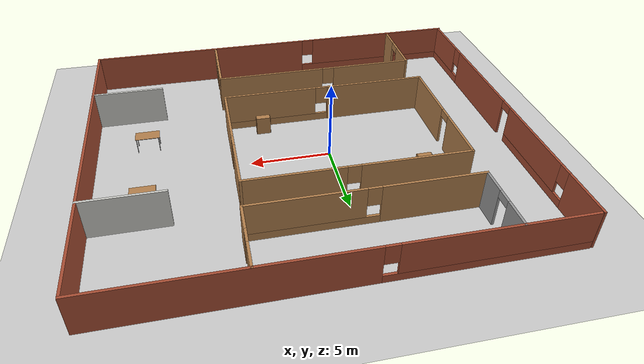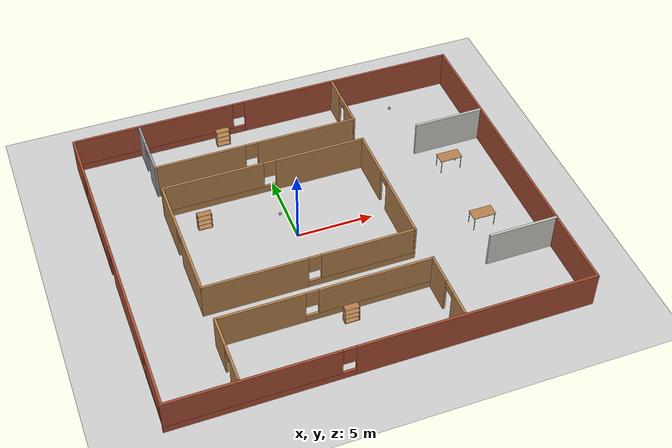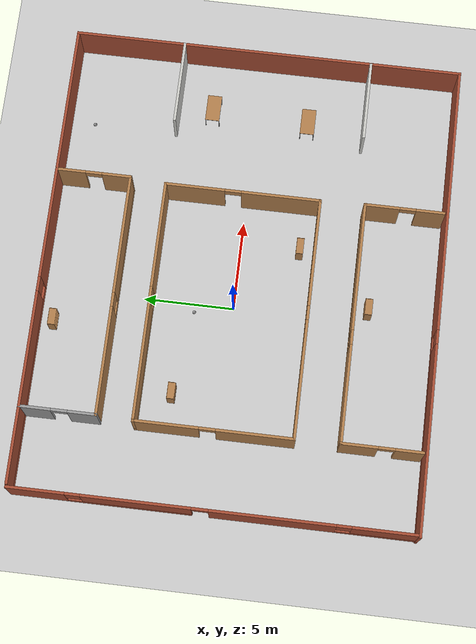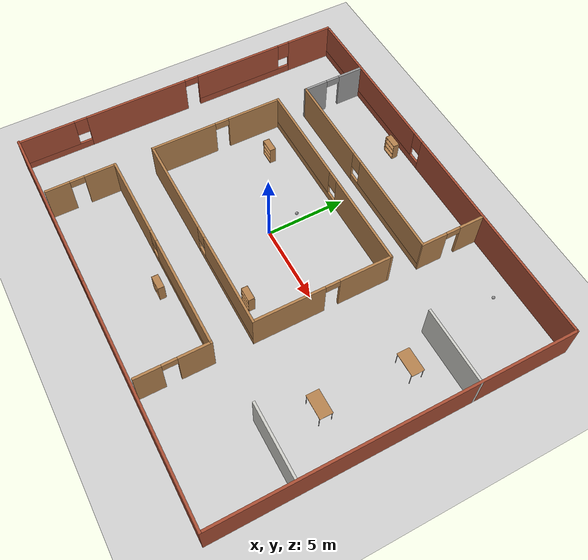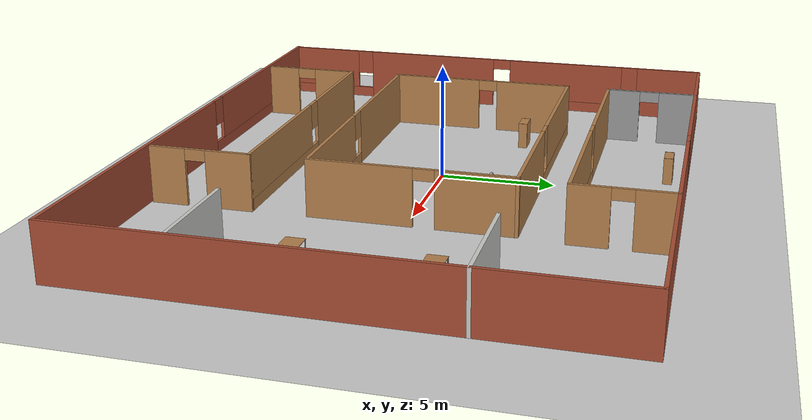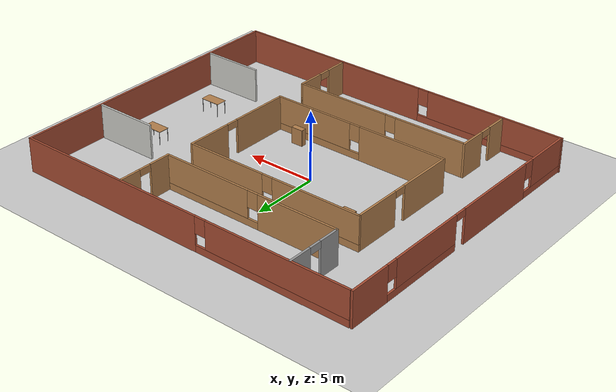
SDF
<sdf version="1.6">
 <world name="default">
  <light name="sun" type="directional">
   <pose>0 0 10 0 -0 0</pose>
   <diffuse>0.8 0.8 0.8 1</diffuse>
   <specular>0.2 0.2 0.2 1</specular>
   <attenuation>
    <range>1000</range>
    <constant>0.9</constant>
    <linear>0.01</linear>
    <quadratic>0.001</quadratic>
   </attenuation>
   <direction>-0.5 0.1 -0.9</direction>
  </light>
  <model name="ground_plane">
   <static>1</static>
   <link name="link">
    <collision name="collision">
     <geometry><plane><normal>0 0 1</normal><size>100 100</size></plane></geometry>
     <surface><friction><ode><mu>100</mu><mu2>50</mu2></ode></friction></surface>
    </collision>
    <visual name="visual">
     <cast_shadows>0</cast_shadows>
     <geometry><plane><normal>0 0 1</normal><size>100 100</size></plane></geometry>
     <material>
      <script><uri>file://media/materials/scripts/gazebo.material</uri><name>Gazebo/Grey</name></script>
     </material>
    </visual>
   </link>
  </model>
  <gravity>0 0 -9.8</gravity>
  <magnetic_field>6e-06 2.3e-05 -4.2e-05</magnetic_field>
  <atmosphere type="adiabatic"/>
  <physics name="default_physics" default="0" type="ode">
   <max_step_size>0.001</max_step_size>
   <real_time_factor>1</real_time_factor>
   <real_time_update_rate>1000</real_time_update_rate>
  </physics>
  <scene><ambient>0.4 0.4 0.4 1</ambient><background>0.7 0.7 0.7 1</background><shadows>1</shadows></scene>
  <spherical_coordinates>
   <surface_model>EARTH_WGS84</surface_model>
   <latitude_deg>0</latitude_deg>
   <longitude_deg>0</longitude_deg>
   <elevation>0</elevation>
   <heading_deg>0</heading_deg>
  </spherical_coordinates>
  <model name="newworld">
   <pose>1.44704 -0.283825 0 0 -0 0</pose>
   <link name="Wall_13">
    <pose>4.60647 0.466552 0 0 -0 1.5708</pose>
    <visual name="Wall_13_Visual_0">
     <pose>-2.13756 0 1.25 0 -0 0</pose>
     <geometry><box><size>4.47488 0.15 2.5</size></box></geometry>
     <material>
      <script><uri>file://media/materials/scripts/gazebo.material</uri><name>Gazebo/Wood</name></script>
      <ambient>0.996078 0.47451 0.0196078 1</ambient>
     </material>
     <meta><layer>0</layer></meta>
    </visual>
    <collision name="Wall_13_Collision_0">
     <geometry><box><size>4.47488 0.15 2.5</size></box></geometry>
     <pose>-2.13756 0 1.25 0 -0 0</pose>
    </collision>
    <visual name="Wall_13_Visual_1">
     <pose>2.68744 0 1.25 0 -0 0</pose>
     <geometry><box><size>3.37512 0.15 2.5</size></box></geometry>
     <material>
      <script><uri>file://media/materials/scripts/gazebo.material</uri><name>Gazebo/Wood</name></script>
      <ambient>0.996078 0.47451 0.0196078 1</ambient>
     </material>
     <meta><layer>0</layer></meta>
    </visual>
    <collision name="Wall_13_Collision_1">
     <geometry><box><size>3.37512 0.15 2.5</size></box></geometry>
     <pose>2.68744 0 1.25 0 -0 0</pose>
    </collision>
    <visual name="Wall_13_Visual_2">
     <pose>0.549876 0 2.25 0 -0 0</pose>
     <geometry><box><size>0.9 0.15 0.5</size></box></geometry>
     <material>
      <script><uri>file://media/materials/scripts/gazebo.material</uri><name>Gazebo/Wood</name></script>
      <ambient>0.996078 0.47451 0.0196078 1</ambient>
     </material>
     <meta><layer>0</layer></meta>
    </visual>
    <collision name="Wall_13_Collision_2">
     <geometry><box><size>0.9 0.15 0.5</size></box></geometry>
     <pose>0.549876 0 2.25 0 -0 0</pose>
    </collision>
   </link>
   <link name="Wall_14">
    <pose>-2.06853 4.76655 0 0 -0 3.14159</pose>
    <visual name="Wall_14_Visual_0">
     <pose>-3.73997 0 1.25 0 -0 0</pose>
     <geometry><box><size>6.02005 0.15 2.5</size></box></geometry>
     <material>
      <script><uri>file://media/materials/scripts/gazebo.material</uri><name>Gazebo/Wood</name></script>
      <ambient>0.996078 0.47451 0.0196078 1</ambient>
     </material>
     <meta><layer>0</layer></meta>
    </visual>
    <collision name="Wall_14_Collision_0">
     <geometry><box><size>6.02005 0.15 2.5</size></box></geometry>
     <pose>-3.73997 0 1.25 0 -0 0</pose>
    </collision>
    <visual name="Wall_14_Visual_1">
     <pose>3.01003 0 0.25 0 -0 0</pose>
     <geometry><box><size>7.47995 0.15 0.5</size></box></geometry>
     <material>
      <script><uri>file://media/materials/scripts/gazebo.material</uri><name>Gazebo/Wood</name></script>
      <ambient>0.996078 0.47451 0.0196078 1</ambient>
     </material>
     <meta><layer>0</layer></meta>
    </visual>
    <collision name="Wall_14_Collision_1">
     <geometry><box><size>7.47995 0.15 0.5</size></box></geometry>
     <pose>3.01003 0 0.25 0 -0 0</pose>
    </collision>
    <visual name="Wall_14_Visual_2">
     <pose>3.41003 0 1.5 0 -0 0</pose>
     <geometry><box><size>6.67995 0.15 2</size></box></geometry>
     <material>
      <script><uri>file://media/materials/scripts/gazebo.material</uri><name>Gazebo/Wood</name></script>
      <ambient>0.996078 0.47451 0.0196078 1</ambient>
     </material>
     <meta><layer>0</layer></meta>
    </visual>
    <collision name="Wall_14_Collision_2">
     <geometry><box><size>6.67995 0.15 2</size></box></geometry>
     <pose>3.41003 0 1.5 0 -0 0</pose>
    </collision>
    <visual name="Wall_14_Visual_3">
     <pose>-0.329949 0 1.9 0 -0 0</pose>
     <geometry><box><size>0.8 0.15 1.2</size></box></geometry>
     <material>
      <script><uri>file://media/materials/scripts/gazebo.material</uri><name>Gazebo/Wood</name></script>
      <ambient>0.996078 0.47451 0.0196078 1</ambient>
     </material>
     <meta><layer>0</layer></meta>
    </visual>
    <collision name="Wall_14_Collision_3">
     <geometry><box><size>0.8 0.15 1.2</size></box></geometry>
     <pose>-0.329949 0 1.9 0 -0 0</pose>
    </collision>
   </link>
   <link name="Wall_2">
    <collision name="Wall_2_Collision">
     <geometry><box><size>21.8915 0.15 2.5</size></box></geometry>
     <pose>0 0 1.25 0 -0 0</pose>
    </collision>
    <visual name="Wall_2_Visual">
     <pose>0 0 1.25 0 -0 0</pose>
     <geometry><box><size>21.8915 0.15 2.5</size></box></geometry>
     <material>
      <script><uri>file://media/materials/scripts/gazebo.material</uri><name>Gazebo/Bricks</name></script>
      <ambient>1 1 1 1</ambient>
     </material>
     <meta><layer>0</layer></meta>
    </visual>
    <pose>13.0496 0 0 0 0 -1.5708</pose>
   </link>
   <link name="Wall_21">
    <pose>-8.67277 -8.48349 0 0 -0 1.5708</pose>
    <visual name="Wall_21_Visual_0">
     <pose>-1.47222 0 1.25 0 -0 0</pose>
     <geometry><box><size>1.55555 0.15 2.5</size></box></geometry>
     <material>
      <script><uri>file://media/materials/scripts/gazebo.material</uri><name>Gazebo/Wood</name></script>
      <ambient>1 1 1 1</ambient>
     </material>
     <meta><layer>0</layer></meta>
    </visual>
    <collision name="Wall_21_Collision_0">
     <geometry><box><size>1.55555 0.15 2.5</size></box></geometry>
     <pose>-1.47222 0 1.25 0 -0 0</pose>
    </collision>
    <visual name="Wall_21_Visual_1">
     <pose>1.22778 0 1.25 0 -0 0</pose>
     <geometry><box><size>2.04445 0.15 2.5</size></box></geometry>
     <material>
      <script><uri>file://media/materials/scripts/gazebo.material</uri><name>Gazebo/Wood</name></script>
      <ambient>1 1 1 1</ambient>
     </material>
     <meta><layer>0</layer></meta>
    </visual>
    <collision name="Wall_21_Collision_1">
     <geometry><box><size>2.04445 0.15 2.5</size></box></geometry>
     <pose>1.22778 0 1.25 0 -0 0</pose>
    </collision>
    <visual name="Wall_21_Visual_2">
     <pose>-0.244446 0 2.25 0 -0 0</pose>
     <geometry><box><size>0.9 0.15 0.5</size></box></geometry>
     <material>
      <script><uri>file://media/materials/scripts/gazebo.material</uri><name>Gazebo/Wood</name></script>
      <ambient>1 1 1 1</ambient>
     </material>
     <meta><layer>0</layer></meta>
    </visual>
    <collision name="Wall_21_Collision_2">
     <geometry><box><size>0.9 0.15 0.5</size></box></geometry>
     <pose>-0.244446 0 2.25 0 -0 0</pose>
    </collision>
   </link>
   <link name="Wall_22">
    <pose>-1.99777 -6.30849 0 0 -0 0</pose>
    <visual name="Wall_22_Visual_0">
     <pose>-4.01146 0 1.25 0 -0 0</pose>
     <geometry><box><size>5.47708 0.15 2.5</size></box></geometry>
     <material>
      <script><uri>file://media/materials/scripts/gazebo.material</uri><name>Gazebo/Wood</name></script>
      <ambient>1 1 1 1</ambient>
     </material>
     <meta><layer>0</layer></meta>
    </visual>
    <collision name="Wall_22_Collision_0">
     <geometry><box><size>5.47708 0.15 2.5</size></box></geometry>
     <pose>-4.01146 0 1.25 0 -0 0</pose>
    </collision>
    <visual name="Wall_22_Visual_1">
     <pose>2.73854 0 0.25 0 -0 0</pose>
     <geometry><box><size>8.02292 0.15 0.5</size></box></geometry>
     <material>
      <script><uri>file://media/materials/scripts/gazebo.material</uri><name>Gazebo/Wood</name></script>
      <ambient>1 1 1 1</ambient>
     </material>
     <meta><layer>0</layer></meta>
    </visual>
    <collision name="Wall_22_Collision_1">
     <geometry><box><size>8.02292 0.15 0.5</size></box></geometry>
     <pose>2.73854 0 0.25 0 -0 0</pose>
    </collision>
    <visual name="Wall_22_Visual_2">
     <pose>3.13854 0 1.5 0 -0 0</pose>
     <geometry><box><size>7.22292 0.15 2</size></box></geometry>
     <material>
      <script><uri>file://media/materials/scripts/gazebo.material</uri><name>Gazebo/Wood</name></script>
      <ambient>1 1 1 1</ambient>
     </material>
     <meta><layer>0</layer></meta>
    </visual>
    <collision name="Wall_22_Collision_2">
     <geometry><box><size>7.22292 0.15 2</size></box></geometry>
     <pose>3.13854 0 1.5 0 -0 0</pose>
    </collision>
    <visual name="Wall_22_Visual_3">
     <pose>-0.872921 0 1.9 0 -0 0</pose>
     <geometry><box><size>0.8 0.15 1.2</size></box></geometry>
     <material>
      <script><uri>file://media/materials/scripts/gazebo.material</uri><name>Gazebo/Wood</name></script>
      <ambient>1 1 1 1</ambient>
     </material>
     <meta><layer>0</layer></meta>
    </visual>
    <collision name="Wall_22_Collision_3">
     <geometry><box><size>0.8 0.15 1.2</size></box></geometry>
     <pose>-0.872921 0 1.9 0 -0 0</pose>
    </collision>
   </link>
   <link name="Wall_23">
    <pose>4.67723 -8.48349 0 0 0 -1.5708</pose>
    <visual name="Wall_23_Visual_0">
     <pose>-1.2531 0 1.25 0 -0 0</pose>
     <geometry><box><size>1.9938 0.15 2.5</size></box></geometry>
     <material>
      <script><uri>file://media/materials/scripts/gazebo.material</uri><name>Gazebo/Wood</name></script>
      <ambient>1 1 1 1</ambient>
     </material>
     <meta><layer>0</layer></meta>
    </visual>
    <collision name="Wall_23_Collision_0">
     <geometry><box><size>1.9938 0.15 2.5</size></box></geometry>
     <pose>-1.2531 0 1.25 0 -0 0</pose>
    </collision>
    <visual name="Wall_23_Visual_1">
     <pose>1.4469 0 1.25 0 -0 0</pose>
     <geometry><box><size>1.6062 0.15 2.5</size></box></geometry>
     <material>
      <script><uri>file://media/materials/scripts/gazebo.material</uri><name>Gazebo/Wood</name></script>
      <ambient>1 1 1 1</ambient>
     </material>
     <meta><layer>0</layer></meta>
    </visual>
    <collision name="Wall_23_Collision_1">
     <geometry><box><size>1.6062 0.15 2.5</size></box></geometry>
     <pose>1.4469 0 1.25 0 -0 0</pose>
    </collision>
    <visual name="Wall_23_Visual_2">
     <pose>0.193803 0 2.25 0 -0 0</pose>
     <geometry><box><size>0.9 0.15 0.5</size></box></geometry>
     <material>
      <script><uri>file://media/materials/scripts/gazebo.material</uri><name>Gazebo/Wood</name></script>
      <ambient>1 1 1 1</ambient>
     </material>
     <meta><layer>0</layer></meta>
    </visual>
    <collision name="Wall_23_Collision_2">
     <geometry><box><size>0.9 0.15 0.5</size></box></geometry>
     <pose>0.193803 0 2.25 0 -0 0</pose>
    </collision>
   </link>
   <link name="Wall_25">
    <pose>-8.67277 8.80166 0 0 0 -1.5708</pose>
    <visual name="Wall_25_Visual_0">
     <pose>-1.25114 0 1.25 0 -0 0</pose>
     <geometry><box><size>1.74771 0.15 2.5</size></box></geometry>
     <material>
      <script><uri>file://media/materials/scripts/gazebo.material</uri><name>Gazebo/Grey</name></script>
      <ambient>1 1 1 1</ambient>
     </material>
     <meta><layer>0</layer></meta>
    </visual>
    <collision name="Wall_25_Collision_0">
     <geometry><box><size>1.74771 0.15 2.5</size></box></geometry>
     <pose>-1.25114 0 1.25 0 -0 0</pose>
    </collision>
    <visual name="Wall_25_Visual_1">
     <pose>1.32386 0 1.25 0 -0 0</pose>
     <geometry><box><size>1.60229 0.15 2.5</size></box></geometry>
     <material>
      <script><uri>file://media/materials/scripts/gazebo.material</uri><name>Gazebo/Grey</name></script>
      <ambient>1 1 1 1</ambient>
     </material>
     <meta><layer>0</layer></meta>
    </visual>
    <collision name="Wall_25_Collision_1">
     <geometry><box><size>1.60229 0.15 2.5</size></box></geometry>
     <pose>1.32386 0 1.25 0 -0 0</pose>
    </collision>
    <visual name="Wall_25_Visual_2">
     <pose>0.072712 0 2.25 0 -0 0</pose>
     <geometry><box><size>0.9 0.15 0.5</size></box></geometry>
     <material>
      <script><uri>file://media/materials/scripts/gazebo.material</uri><name>Gazebo/Grey</name></script>
      <ambient>1 1 1 1</ambient>
     </material>
     <meta><layer>0</layer></meta>
    </visual>
    <collision name="Wall_25_Collision_2">
     <geometry><box><size>0.9 0.15 0.5</size></box></geometry>
     <pose>0.072712 0 2.25 0 -0 0</pose>
    </collision>
   </link>
   <link name="Wall_34">
    <pose>-1.99777 6.75166 0 0 -0 0</pose>
    <visual name="Wall_34_Visual_0">
     <pose>-3.72843 0 1.25 0 -0 0</pose>
     <geometry><box><size>6.04314 0.15 2.5</size></box></geometry>
     <material>
      <script><uri>file://media/materials/scripts/gazebo.material</uri><name>Gazebo/Wood</name></script>
      <ambient>1 1 1 1</ambient>
     </material>
     <meta><layer>0</layer></meta>
    </visual>
    <collision name="Wall_34_Collision_0">
     <geometry><box><size>6.04314 0.15 2.5</size></box></geometry>
     <pose>-3.72843 0 1.25 0 -0 0</pose>
    </collision>
    <visual name="Wall_34_Visual_1">
     <pose>3.02157 0 0.25 0 -0 0</pose>
     <geometry><box><size>7.45686 0.15 0.5</size></box></geometry>
     <material>
      <script><uri>file://media/materials/scripts/gazebo.material</uri><name>Gazebo/Wood</name></script>
      <ambient>1 1 1 1</ambient>
     </material>
     <meta><layer>0</layer></meta>
    </visual>
    <collision name="Wall_34_Collision_1">
     <geometry><box><size>7.45686 0.15 0.5</size></box></geometry>
     <pose>3.02157 0 0.25 0 -0 0</pose>
    </collision>
    <visual name="Wall_34_Visual_2">
     <pose>3.42157 0 1.5 0 -0 0</pose>
     <geometry><box><size>6.65686 0.15 2</size></box></geometry>
     <material>
      <script><uri>file://media/materials/scripts/gazebo.material</uri><name>Gazebo/Wood</name></script>
      <ambient>1 1 1 1</ambient>
     </material>
     <meta><layer>0</layer></meta>
    </visual>
    <collision name="Wall_34_Collision_2">
     <geometry><box><size>6.65686 0.15 2</size></box></geometry>
     <pose>3.42157 0 1.5 0 -0 0</pose>
    </collision>
    <visual name="Wall_34_Visual_3">
     <pose>-0.306865 0 1.9 0 -0 0</pose>
     <geometry><box><size>0.8 0.15 1.2</size></box></geometry>
     <material>
      <script><uri>file://media/materials/scripts/gazebo.material</uri><name>Gazebo/Wood</name></script>
      <ambient>1 1 1 1</ambient>
     </material>
     <meta><layer>0</layer></meta>
    </visual>
    <collision name="Wall_34_Collision_3">
     <geometry><box><size>0.8 0.15 1.2</size></box></geometry>
     <pose>-0.306865 0 1.9 0 -0 0</pose>
    </collision>
   </link>
   <link name="Wall_38">
    <pose>4.77107 8.80166 0 0 0 -1.5708</pose>
    <visual name="Wall_38_Visual_0">
     <pose>-1.28652 0 1.25 0 -0 0</pose>
     <geometry><box><size>1.67695 0.15 2.5</size></box></geometry>
     <material>
      <script><uri>file://media/materials/scripts/gazebo.material</uri><name>Gazebo/Wood</name></script>
      <ambient>1 1 1 1</ambient>
     </material>
     <meta><layer>0</layer></meta>
    </visual>
    <collision name="Wall_38_Collision_0">
     <geometry><box><size>1.67695 0.15 2.5</size></box></geometry>
     <pose>-1.28652 0 1.25 0 -0 0</pose>
    </collision>
    <visual name="Wall_38_Visual_1">
     <pose>1.28848 0 1.25 0 -0 0</pose>
     <geometry><box><size>1.67304 0.15 2.5</size></box></geometry>
     <material>
      <script><uri>file://media/materials/scripts/gazebo.material</uri><name>Gazebo/Wood</name></script>
      <ambient>1 1 1 1</ambient>
     </material>
     <meta><layer>0</layer></meta>
    </visual>
    <collision name="Wall_38_Collision_1">
     <geometry><box><size>1.67304 0.15 2.5</size></box></geometry>
     <pose>1.28848 0 1.25 0 -0 0</pose>
    </collision>
    <visual name="Wall_38_Visual_2">
     <pose>0.001955 0 2.25 0 -0 0</pose>
     <geometry><box><size>0.9 0.15 0.5</size></box></geometry>
     <material>
      <script><uri>file://media/materials/scripts/gazebo.material</uri><name>Gazebo/Wood</name></script>
      <ambient>1 1 1 1</ambient>
     </material>
     <meta><layer>0</layer></meta>
    </visual>
    <collision name="Wall_38_Collision_2">
     <geometry><box><size>0.9 0.15 0.5</size></box></geometry>
     <pose>0.001955 0 2.25 0 -0 0</pose>
    </collision>
   </link>
   <link name="Wall_40">
    <collision name="Wall_40_Collision">
     <geometry><box><size>4.75 0.15 2.5</size></box></geometry>
     <pose>0 0 1.25 0 -0 0</pose>
    </collision>
    <visual name="Wall_40_Visual">
     <pose>0 0 1.25 0 -0 0</pose>
     <geometry><box><size>4.75 0.15 2.5</size></box></geometry>
     <material>
      <script><uri>file://media/materials/scripts/gazebo.material</uri><name>Gazebo/CeilingTiled</name></script>
      <ambient>1 1 1 1</ambient>
     </material>
     <meta><layer>0</layer></meta>
    </visual>
    <pose>10.7504 4.76655 0 0 -0 0</pose>
   </link>
   <link name="Wall_44">
    <collision name="Wall_44_Collision">
     <geometry><box><size>4.5 0.15 2.5</size></box></geometry>
     <pose>0 0 1.25 0 -0 0</pose>
    </collision>
    <visual name="Wall_44_Visual">
     <pose>0 0 1.25 0 -0 0</pose>
     <geometry><box><size>4.5 0.15 2.5</size></box></geometry>
     <material>
      <script><uri>file://media/materials/scripts/gazebo.material</uri><name>Gazebo/CeilingTiled</name></script>
      <ambient>1 1 1 1</ambient>
     </material>
     <meta><layer>0</layer></meta>
    </visual>
    <pose>10.8377 -5.84701 0 0 -0 0</pose>
   </link>
   <link name="Wall_46">
    <pose>-12.989 0.051659 0 0 0 -1.5708</pose>
    <visual name="Wall_46_Visual_0">
     <pose>-9.30395 0 1.25 0 -0 0</pose>
     <geometry><box><size>3.1421 0.15 2.5</size></box></geometry>
     <material>
      <script><uri>file://media/materials/scripts/gazebo.material</uri><name>Gazebo/Bricks</name></script>
      <ambient>1 1 1 1</ambient>
     </material>
     <meta><layer>0</layer></meta>
    </visual>
    <collision name="Wall_46_Collision_0">
     <geometry><box><size>3.1421 0.15 2.5</size></box></geometry>
     <pose>-9.30395 0 1.25 0 -0 0</pose>
    </collision>
    <visual name="Wall_46_Visual_1">
     <pose>3.19952 0 1.25 0 -0 0</pose>
     <geometry><box><size>6.721 0.15 2.5</size></box></geometry>
     <material>
      <script><uri>file://media/materials/scripts/gazebo.material</uri><name>Gazebo/Bricks</name></script>
      <ambient>1 1 1 1</ambient>
     </material>
     <meta><layer>0</layer></meta>
    </visual>
    <collision name="Wall_46_Collision_1">
     <geometry><box><size>6.721 0.15 2.5</size></box></geometry>
     <pose>3.19952 0 1.25 0 -0 0</pose>
    </collision>
    <visual name="Wall_46_Visual_2">
     <pose>-4.39694 0 0.25 0 -0 0</pose>
     <geometry><box><size>6.67192 0.15 0.5</size></box></geometry>
     <material>
      <script><uri>file://media/materials/scripts/gazebo.material</uri><name>Gazebo/Bricks</name></script>
      <ambient>1 1 1 1</ambient>
     </material>
     <meta><layer>0</layer></meta>
    </visual>
    <collision name="Wall_46_Collision_2">
     <geometry><box><size>6.67192 0.15 0.5</size></box></geometry>
     <pose>-4.39694 0 0.25 0 -0 0</pose>
    </collision>
    <visual name="Wall_46_Visual_3">
     <pose>8.71751 0 0.25 0 -0 0</pose>
     <geometry><box><size>4.31498 0.15 0.5</size></box></geometry>
     <material>
      <script><uri>file://media/materials/scripts/gazebo.material</uri><name>Gazebo/Bricks</name></script>
      <ambient>1 1 1 1</ambient>
     </material>
     <meta><layer>0</layer></meta>
    </visual>
    <collision name="Wall_46_Collision_3">
     <geometry><box><size>4.31498 0.15 0.5</size></box></geometry>
     <pose>8.71751 0 0.25 0 -0 0</pose>
    </collision>
    <visual name="Wall_46_Visual_4">
     <pose>-3.99694 0 1.5 0 -0 0</pose>
     <geometry><box><size>5.87192 0.15 2</size></box></geometry>
     <material>
      <script><uri>file://media/materials/scripts/gazebo.material</uri><name>Gazebo/Bricks</name></script>
      <ambient>1 1 1 1</ambient>
     </material>
     <meta><layer>0</layer></meta>
    </visual>
    <collision name="Wall_46_Collision_4">
     <geometry><box><size>5.87192 0.15 2</size></box></geometry>
     <pose>-3.99694 0 1.5 0 -0 0</pose>
    </collision>
    <visual name="Wall_46_Visual_5">
     <pose>-3.99694 0 1.5 0 -0 0</pose>
     <geometry><box><size>5.87192 0.15 2</size></box></geometry>
     <material>
      <script><uri>file://media/materials/scripts/gazebo.material</uri><name>Gazebo/Bricks</name></script>
      <ambient>1 1 1 1</ambient>
     </material>
     <meta><layer>0</layer></meta>
    </visual>
    <collision name="Wall_46_Collision_5">
     <geometry><box><size>5.87192 0.15 2</size></box></geometry>
     <pose>-3.99694 0 1.5 0 -0 0</pose>
    </collision>
    <visual name="Wall_46_Visual_6">
     <pose>9.11751 0 1.5 0 -0 0</pose>
     <geometry><box><size>3.51498 0.15 2</size></box></geometry>
     <material>
      <script><uri>file://media/materials/scripts/gazebo.material</uri><name>Gazebo/Bricks</name></script>
      <ambient>1 1 1 1</ambient>
     </material>
     <meta><layer>0</layer></meta>
    </visual>
    <collision name="Wall_46_Collision_6">
     <geometry><box><size>3.51498 0.15 2</size></box></geometry>
     <pose>9.11751 0 1.5 0 -0 0</pose>
    </collision>
    <visual name="Wall_46_Visual_7">
     <pose>-7.3329 0 1.9 0 -0 0</pose>
     <geometry><box><size>0.8 0.15 1.2</size></box></geometry>
     <material>
      <script><uri>file://media/materials/scripts/gazebo.material</uri><name>Gazebo/Bricks</name></script>
      <ambient>1 1 1 1</ambient>
     </material>
     <meta><layer>0</layer></meta>
    </visual>
    <collision name="Wall_46_Collision_7">
     <geometry><box><size>0.8 0.15 1.2</size></box></geometry>
     <pose>-7.3329 0 1.9 0 -0 0</pose>
    </collision>
    <visual name="Wall_46_Visual_8">
     <pose>6.96002 0 1.9 0 -0 0</pose>
     <geometry><box><size>0.8 0.15 1.2</size></box></geometry>
     <material>
      <script><uri>file://media/materials/scripts/gazebo.material</uri><name>Gazebo/Bricks</name></script>
      <ambient>1 1 1 1</ambient>
     </material>
     <meta><layer>0</layer></meta>
    </visual>
    <collision name="Wall_46_Collision_8">
     <geometry><box><size>0.8 0.15 1.2</size></box></geometry>
     <pose>6.96002 0 1.9 0 -0 0</pose>
    </collision>
    <visual name="Wall_46_Visual_9">
     <pose>-0.610984 0 2.25 0 -0 0</pose>
     <geometry><box><size>0.9 0.15 0.5</size></box></geometry>
     <material>
      <script><uri>file://media/materials/scripts/gazebo.material</uri><name>Gazebo/Bricks</name></script>
      <ambient>1 1 1 1</ambient>
     </material>
     <meta><layer>0</layer></meta>
    </visual>
    <collision name="Wall_46_Collision_9">
     <geometry><box><size>0.9 0.15 0.5</size></box></geometry>
     <pose>-0.610984 0 2.25 0 -0 0</pose>
    </collision>
    <visual name="Wall_46_Visual_10">
     <pose>-0.610984 0 2.25 0 -0 0</pose>
     <geometry><box><size>0.9 0.15 0.5</size></box></geometry>
     <material>
      <script><uri>file://media/materials/scripts/gazebo.material</uri><name>Gazebo/Bricks</name></script>
      <ambient>1 1 1 1</ambient>
     </material>
     <meta><layer>0</layer></meta>
    </visual>
    <collision name="Wall_46_Collision_10">
     <geometry><box><size>0.9 0.15 0.5</size></box></geometry>
     <pose>-0.610984 0 2.25 0 -0 0</pose>
    </collision>
   </link>
   <link name="Wall_49">
    <pose>-0.000434 -10.8708 0 0 -0 3.14159</pose>
    <visual name="Wall_49_Visual_0">
     <pose>-5.60024 0 1.25 0 -0 0</pose>
     <geometry><box><size>15.0495 0.15 2.5</size></box></geometry>
     <material>
      <script><uri>file://media/materials/scripts/gazebo.material</uri><name>Gazebo/Bricks</name></script>
      <ambient>1 1 1 1</ambient>
     </material>
     <meta><layer>0</layer></meta>
    </visual>
    <collision name="Wall_49_Collision_0">
     <geometry><box><size>15.0495 0.15 2.5</size></box></geometry>
     <pose>-5.60024 0 1.25 0 -0 0</pose>
    </collision>
    <visual name="Wall_49_Visual_1">
     <pose>7.52476 0 0.25 0 -0 0</pose>
     <geometry><box><size>11.2005 0.15 0.5</size></box></geometry>
     <material>
      <script><uri>file://media/materials/scripts/gazebo.material</uri><name>Gazebo/Bricks</name></script>
      <ambient>1 1 1 1</ambient>
     </material>
     <meta><layer>0</layer></meta>
    </visual>
    <collision name="Wall_49_Collision_1">
     <geometry><box><size>11.2005 0.15 0.5</size></box></geometry>
     <pose>7.52476 0 0.25 0 -0 0</pose>
    </collision>
    <visual name="Wall_49_Visual_2">
     <pose>7.92476 0 1.5 0 -0 0</pose>
     <geometry><box><size>10.4005 0.15 2</size></box></geometry>
     <material>
      <script><uri>file://media/materials/scripts/gazebo.material</uri><name>Gazebo/Bricks</name></script>
      <ambient>1 1 1 1</ambient>
     </material>
     <meta><layer>0</layer></meta>
    </visual>
    <collision name="Wall_49_Collision_2">
     <geometry><box><size>10.4005 0.15 2</size></box></geometry>
     <pose>7.92476 0 1.5 0 -0 0</pose>
    </collision>
    <visual name="Wall_49_Visual_3">
     <pose>2.32453 0 1.9 0 -0 0</pose>
     <geometry><box><size>0.8 0.15 1.2</size></box></geometry>
     <material>
      <script><uri>file://media/materials/scripts/gazebo.material</uri><name>Gazebo/Bricks</name></script>
      <ambient>1 1 1 1</ambient>
     </material>
     <meta><layer>0</layer></meta>
    </visual>
    <collision name="Wall_49_Collision_3">
     <geometry><box><size>0.8 0.15 1.2</size></box></geometry>
     <pose>2.32453 0 1.9 0 -0 0</pose>
    </collision>
   </link>
   <link name="Wall_5">
    <pose>-8.74353 0.466552 0 0 0 -1.5708</pose>
    <visual name="Wall_5_Visual_0">
     <pose>-2.5813 0 1.25 0 -0 0</pose>
     <geometry><box><size>3.58739 0.15 2.5</size></box></geometry>
     <material>
      <script><uri>file://media/materials/scripts/gazebo.material</uri><name>Gazebo/Wood</name></script>
      <ambient>0.996078 0.47451 0.0196078 1</ambient>
     </material>
     <meta><layer>0</layer></meta>
    </visual>
    <collision name="Wall_5_Collision_0">
     <geometry><box><size>3.58739 0.15 2.5</size></box></geometry>
     <pose>-2.5813 0 1.25 0 -0 0</pose>
    </collision>
    <visual name="Wall_5_Visual_1">
     <pose>2.2437 0 1.25 0 -0 0</pose>
     <geometry><box><size>4.2626 0.15 2.5</size></box></geometry>
     <material>
      <script><uri>file://media/materials/scripts/gazebo.material</uri><name>Gazebo/Wood</name></script>
      <ambient>0.996078 0.47451 0.0196078 1</ambient>
     </material>
     <meta><layer>0</layer></meta>
    </visual>
    <collision name="Wall_5_Collision_1">
     <geometry><box><size>4.2626 0.15 2.5</size></box></geometry>
     <pose>2.2437 0 1.25 0 -0 0</pose>
    </collision>
    <visual name="Wall_5_Visual_2">
     <pose>-0.337605 0 2.25 0 -0 0</pose>
     <geometry><box><size>0.9 0.15 0.5</size></box></geometry>
     <material>
      <script><uri>file://media/materials/scripts/gazebo.material</uri><name>Gazebo/Wood</name></script>
      <ambient>0.996078 0.47451 0.0196078 1</ambient>
     </material>
     <meta><layer>0</layer></meta>
    </visual>
    <collision name="Wall_5_Collision_2">
     <geometry><box><size>0.9 0.15 0.5</size></box></geometry>
     <pose>-0.337605 0 2.25 0 -0 0</pose>
    </collision>
   </link>
   <link name="Wall_51">
    <pose>0.124566 10.8708 0 0 -0 3.14159</pose>
    <visual name="Wall_51_Visual_0">
     <pose>-5.68751 0 1.25 0 -0 0</pose>
     <geometry><box><size>14.625 0.15 2.5</size></box></geometry>
     <material>
      <script><uri>file://media/materials/scripts/gazebo.material</uri><name>Gazebo/Bricks</name></script>
      <ambient>1 1 1 1</ambient>
     </material>
     <meta><layer>0</layer></meta>
    </visual>
    <collision name="Wall_51_Collision_0">
     <geometry><box><size>14.625 0.15 2.5</size></box></geometry>
     <pose>-5.68751 0 1.25 0 -0 0</pose>
    </collision>
    <visual name="Wall_51_Visual_1">
     <pose>7.31249 0 0.25 0 -0 0</pose>
     <geometry><box><size>11.375 0.15 0.5</size></box></geometry>
     <material>
      <script><uri>file://media/materials/scripts/gazebo.material</uri><name>Gazebo/Bricks</name></script>
      <ambient>1 1 1 1</ambient>
     </material>
     <meta><layer>0</layer></meta>
    </visual>
    <collision name="Wall_51_Collision_1">
     <geometry><box><size>11.375 0.15 0.5</size></box></geometry>
     <pose>7.31249 0 0.25 0 -0 0</pose>
    </collision>
    <visual name="Wall_51_Visual_2">
     <pose>7.71249 0 1.5 0 -0 0</pose>
     <geometry><box><size>10.575 0.15 2</size></box></geometry>
     <material>
      <script><uri>file://media/materials/scripts/gazebo.material</uri><name>Gazebo/Bricks</name></script>
      <ambient>1 1 1 1</ambient>
     </material>
     <meta><layer>0</layer></meta>
    </visual>
    <collision name="Wall_51_Collision_2">
     <geometry><box><size>10.575 0.15 2</size></box></geometry>
     <pose>7.71249 0 1.5 0 -0 0</pose>
    </collision>
    <visual name="Wall_51_Visual_3">
     <pose>2.02498 0 1.9 0 -0 0</pose>
     <geometry><box><size>0.8 0.15 1.2</size></box></geometry>
     <material>
      <script><uri>file://media/materials/scripts/gazebo.material</uri><name>Gazebo/Bricks</name></script>
      <ambient>1 1 1 1</ambient>
     </material>
     <meta><layer>0</layer></meta>
    </visual>
    <collision name="Wall_51_Collision_3">
     <geometry><box><size>0.8 0.15 1.2</size></box></geometry>
     <pose>2.02498 0 1.9 0 -0 0</pose>
    </collision>
   </link>
   <link name="Wall_6">
    <pose>-2.06853 -3.83345 0 0 -0 0</pose>
    <visual name="Wall_6_Visual_0">
     <pose>-3.4454 0 1.25 0 -0 0</pose>
     <geometry><box><size>6.60919 0.15 2.5</size></box></geometry>
     <material>
      <script><uri>file://media/materials/scripts/gazebo.material</uri><name>Gazebo/Wood</name></script>
      <ambient>0.996078 0.47451 0.0196078 1</ambient>
     </material>
     <meta><layer>0</layer></meta>
    </visual>
    <collision name="Wall_6_Collision_0">
     <geometry><box><size>6.60919 0.15 2.5</size></box></geometry>
     <pose>-3.4454 0 1.25 0 -0 0</pose>
    </collision>
    <visual name="Wall_6_Visual_1">
     <pose>3.3046 0 0.25 0 -0 0</pose>
     <geometry><box><size>6.89081 0.15 0.5</size></box></geometry>
     <material>
      <script><uri>file://media/materials/scripts/gazebo.material</uri><name>Gazebo/Wood</name></script>
      <ambient>0.996078 0.47451 0.0196078 1</ambient>
     </material>
     <meta><layer>0</layer></meta>
    </visual>
    <collision name="Wall_6_Collision_1">
     <geometry><box><size>6.89081 0.15 0.5</size></box></geometry>
     <pose>3.3046 0 0.25 0 -0 0</pose>
    </collision>
    <visual name="Wall_6_Visual_2">
     <pose>3.7046 0 1.5 0 -0 0</pose>
     <geometry><box><size>6.09081 0.15 2</size></box></geometry>
     <material>
      <script><uri>file://media/materials/scripts/gazebo.material</uri><name>Gazebo/Wood</name></script>
      <ambient>0.996078 0.47451 0.0196078 1</ambient>
     </material>
     <meta><layer>0</layer></meta>
    </visual>
    <collision name="Wall_6_Collision_2">
     <geometry><box><size>6.09081 0.15 2</size></box></geometry>
     <pose>3.7046 0 1.5 0 -0 0</pose>
    </collision>
    <visual name="Wall_6_Visual_3">
     <pose>0.259192 0 1.9 0 -0 0</pose>
     <geometry><box><size>0.8 0.15 1.2</size></box></geometry>
     <material>
      <script><uri>file://media/materials/scripts/gazebo.material</uri><name>Gazebo/Wood</name></script>
      <ambient>0.996078 0.47451 0.0196078 1</ambient>
     </material>
     <meta><layer>0</layer></meta>
    </visual>
    <collision name="Wall_6_Collision_3">
     <geometry><box><size>0.8 0.15 1.2</size></box></geometry>
     <pose>0.259192 0 1.9 0 -0 0</pose>
    </collision>
   </link>
   <static>1</static>
  </model>
  <model name="my_ball">
   <link name="link_0">
    <inertial>
     <mass>1</mass>
     <inertia><ixx>0.1</ixx><ixy>0</ixy><ixz>0</ixz><iyy>0.1</iyy><iyz>0</iyz><izz>0.1</izz></inertia>
    </inertial>
    <visual name="visual">
     <geometry><sphere><radius>0.1</radius></sphere></geometry>
     <material>
      <lighting>1</lighting>
      <script><uri>file://media/materials/scripts/gazebo.material</uri><name>Gazebo/Grey</name></script>
      <shader type="pixel"><normal_map>__default__</normal_map></shader>
      <ambient>1 1 1 1</ambient>
      <diffuse>1 1 1 1</diffuse>
      <specular>1 1 1 1</specular>
      <emissive>1 1 1 1</emissive>
     </material>
    </visual>
    <collision name="collision">
     <geometry><sphere><radius>0.1</radius></sphere></geometry>
     <surface>
      <friction>
       <ode><mu>1</mu><mu2>1</mu2><fdir1>0 0 0</fdir1><slip1>0</slip1><slip2>0</slip2></ode>
       <torsional>
        <coefficient>1</coefficient>
        <patch_radius>0</patch_radius>
        <surface_radius>0</surface_radius>
        <use_patch_radius>1</use_patch_radius>
        <ode><slip>0</slip></ode>
       </torsional>
      </friction>
      <bounce><restitution_coefficient>0</restitution_coefficient><threshold>1e+06</threshold></bounce>
      <contact>
       <collide_without_contact>0</collide_without_contact>
       <collide_without_contact_bitmask>1</collide_without_contact_bitmask>
       <collide_bitmask>1</collide_bitmask>
       <ode>
        <soft_cfm>0</soft_cfm>
        <soft_erp>0.2</soft_erp>
        <kp>1e+13</kp>
        <kd>1</kd>
        <max_vel>0.01</max_vel>
        <min_depth>0</min_depth>
       </ode>
       <bullet>
        <split_impulse>1</split_impulse>
        <split_impulse_penetration_threshold>-0.01</split_impulse_penetration_threshold>
        <soft_cfm>0</soft_cfm>
        <soft_erp>0.2</soft_erp>
        <kp>1e+13</kp>
        <kd>1</kd>
       </bullet>
      </contact>
     </surface>
    </collision>
   </link>
   <static>0</static>
   <pose>-0.44264 2.13904 0.1 0 -0 0</pose>
  </model>
  <model name="bookshelf">
   <static>1</static>
   <link name="link">
    <inertial><mass>1</mass></inertial>
    <collision name="back">
     <pose>0 0.005 0.6 0 -0 0</pose>
     <geometry><box><size>0.9 0.01 1.2</size></box></geometry>
    </collision>
    <visual name="visual1">
     <pose>0 0.005 0.6 0 -0 0</pose>
     <geometry><box><size>0.9 0.01 1.2</size></box></geometry>
     <material>
      <script><uri>file://media/materials/scripts/gazebo.material</uri><name>Gazebo/Wood</name></script>
     </material>
    </visual>
    <collision name="left_side">
     <pose>0.45 -0.195 0.6 0 -0 0</pose>
     <geometry><box><size>0.02 0.4 1.2</size></box></geometry>
    </collision>
    <visual name="visual2">
     <pose>0.45 -0.195 0.6 0 -0 0</pose>
     <geometry><box><size>0.02 0.4 1.2</size></box></geometry>
     <material>
      <script><uri>file://media/materials/scripts/gazebo.material</uri><name>Gazebo/Wood</name></script>
     </material>
    </visual>
    <collision name="right_side">
     <pose>-0.45 -0.195 0.6 0 -0 0</pose>
     <geometry><box><size>0.02 0.4 1.2</size></box></geometry>
    </collision>
    <visual name="visual3">
     <pose>-0.45 -0.195 0.6 0 -0 0</pose>
     <geometry><box><size>0.02 0.4 1.2</size></box></geometry>
     <material>
      <script><uri>file://media/materials/scripts/gazebo.material</uri><name>Gazebo/Wood</name></script>
     </material>
    </visual>
    <collision name="bottom">
     <pose>0 -0.195 0.03 0 -0 0</pose>
     <geometry><box><size>0.88 0.4 0.06</size></box></geometry>
    </collision>
    <visual name="visual4">
     <pose>0 -0.195 0.03 0 -0 0</pose>
     <geometry><box><size>0.88 0.4 0.06</size></box></geometry>
     <material>
      <script><uri>file://media/materials/scripts/gazebo.material</uri><name>Gazebo/Wood</name></script>
     </material>
    </visual>
    <collision name="top">
     <pose>0 -0.195 1.19 0 -0 0</pose>
     <geometry><box><size>0.88 0.4 0.02</size></box></geometry>
    </collision>
    <visual name="visual5">
     <pose>0 -0.195 1.19 0 -0 0</pose>
     <geometry><box><size>0.88 0.4 0.02</size></box></geometry>
     <material>
      <script><uri>file://media/materials/scripts/gazebo.material</uri><name>Gazebo/Wood</name></script>
     </material>
    </visual>
    <collision name="low_shelf">
     <pose>0 -0.195 0.43 0 -0 0</pose>
     <geometry><box><size>0.88 0.4 0.02</size></box></geometry>
    </collision>
    <visual name="visual6">
     <pose>0 -0.195 0.43 0 -0 0</pose>
     <geometry><box><size>0.88 0.4 0.02</size></box></geometry>
     <material>
      <script><uri>file://media/materials/scripts/gazebo.material</uri><name>Gazebo/Wood</name></script>
     </material>
    </visual>
    <collision name="high_shelf">
     <pose>0 -0.195 0.8 0 -0 0</pose>
     <geometry><box><size>0.88 0.4 0.02</size></box></geometry>
    </collision>
    <visual name="visual7">
     <pose>0 -0.195 0.8 0 -0 0</pose>
     <geometry><box><size>0.88 0.4 0.02</size></box></geometry>
     <material>
      <script><uri>file://media/materials/scripts/gazebo.material</uri><name>Gazebo/Wood</name></script>
     </material>
    </visual>
   </link>
   <pose>0.703451 -7.22059 0 0 -0 0</pose>
  </model>
  <model name="bookshelf_0">
   <static>1</static>
   <link name="link">
    <inertial><mass>1</mass></inertial>
    <collision name="back">
     <pose>0 0.005 0.6 0 -0 0</pose>
     <geometry><box><size>0.9 0.01 1.2</size></box></geometry>
    </collision>
    <visual name="visual1">
     <pose>0 0.005 0.6 0 -0 0</pose>
     <geometry><box><size>0.9 0.01 1.2</size></box></geometry>
     <material>
      <script><uri>file://media/materials/scripts/gazebo.material</uri><name>Gazebo/Wood</name></script>
     </material>
    </visual>
    <collision name="left_side">
     <pose>0.45 -0.195 0.6 0 -0 0</pose>
     <geometry><box><size>0.02 0.4 1.2</size></box></geometry>
    </collision>
    <visual name="visual2">
     <pose>0.45 -0.195 0.6 0 -0 0</pose>
     <geometry><box><size>0.02 0.4 1.2</size></box></geometry>
     <material>
      <script><uri>file://media/materials/scripts/gazebo.material</uri><name>Gazebo/Wood</name></script>
     </material>
    </visual>
    <collision name="right_side">
     <pose>-0.45 -0.195 0.6 0 -0 0</pose>
     <geometry><box><size>0.02 0.4 1.2</size></box></geometry>
    </collision>
    <visual name="visual3">
     <pose>-0.45 -0.195 0.6 0 -0 0</pose>
     <geometry><box><size>0.02 0.4 1.2</size></box></geometry>
     <material>
      <script><uri>file://media/materials/scripts/gazebo.material</uri><name>Gazebo/Wood</name></script>
     </material>
    </visual>
    <collision name="bottom">
     <pose>0 -0.195 0.03 0 -0 0</pose>
     <geometry><box><size>0.88 0.4 0.06</size></box></geometry>
    </collision>
    <visual name="visual4">
     <pose>0 -0.195 0.03 0 -0 0</pose>
     <geometry><box><size>0.88 0.4 0.06</size></box></geometry>
     <material>
      <script><uri>file://media/materials/scripts/gazebo.material</uri><name>Gazebo/Wood</name></script>
     </material>
    </visual>
    <collision name="top">
     <pose>0 -0.195 1.19 0 -0 0</pose>
     <geometry><box><size>0.88 0.4 0.02</size></box></geometry>
    </collision>
    <visual name="visual5">
     <pose>0 -0.195 1.19 0 -0 0</pose>
     <geometry><box><size>0.88 0.4 0.02</size></box></geometry>
     <material>
      <script><uri>file://media/materials/scripts/gazebo.material</uri><name>Gazebo/Wood</name></script>
     </material>
    </visual>
    <collision name="low_shelf">
     <pose>0 -0.195 0.43 0 -0 0</pose>
     <geometry><box><size>0.88 0.4 0.02</size></box></geometry>
    </collision>
    <visual name="visual6">
     <pose>0 -0.195 0.43 0 -0 0</pose>
     <geometry><box><size>0.88 0.4 0.02</size></box></geometry>
     <material>
      <script><uri>file://media/materials/scripts/gazebo.material</uri><name>Gazebo/Wood</name></script>
     </material>
    </visual>
    <collision name="high_shelf">
     <pose>0 -0.195 0.8 0 -0 0</pose>
     <geometry><box><size>0.88 0.4 0.02</size></box></geometry>
    </collision>
    <visual name="visual7">
     <pose>0 -0.195 0.8 0 -0 0</pose>
     <geometry><box><size>0.88 0.4 0.02</size></box></geometry>
     <material>
      <script><uri>file://media/materials/scripts/gazebo.material</uri><name>Gazebo/Wood</name></script>
     </material>
    </visual>
   </link>
   <pose>-5.20691 2.95803 0 0 -0 0</pose>
  </model>
  <model name="bookshelf_1">
   <static>1</static>
   <link name="link">
    <inertial><mass>1</mass></inertial>
    <collision name="back">
     <pose>0 0.005 0.6 0 -0 0</pose>
     <geometry><box><size>0.9 0.01 1.2</size></box></geometry>
    </collision>
    <visual name="visual1">
     <pose>0 0.005 0.6 0 -0 0</pose>
     <geometry><box><size>0.9 0.01 1.2</size></box></geometry>
     <material>
      <script><uri>file://media/materials/scripts/gazebo.material</uri><name>Gazebo/Wood</name></script>
     </material>
    </visual>
    <collision name="left_side">
     <pose>0.45 -0.195 0.6 0 -0 0</pose>
     <geometry><box><size>0.02 0.4 1.2</size></box></geometry>
    </collision>
    <visual name="visual2">
     <pose>0.45 -0.195 0.6 0 -0 0</pose>
     <geometry><box><size>0.02 0.4 1.2</size></box></geometry>
     <material>
      <script><uri>file://media/materials/scripts/gazebo.material</uri><name>Gazebo/Wood</name></script>
     </material>
    </visual>
    <collision name="right_side">
     <pose>-0.45 -0.195 0.6 0 -0 0</pose>
     <geometry><box><size>0.02 0.4 1.2</size></box></geometry>
    </collision>
    <visual name="visual3">
     <pose>-0.45 -0.195 0.6 0 -0 0</pose>
     <geometry><box><size>0.02 0.4 1.2</size></box></geometry>
     <material>
      <script><uri>file://media/materials/scripts/gazebo.material</uri><name>Gazebo/Wood</name></script>
     </material>
    </visual>
    <collision name="bottom">
     <pose>0 -0.195 0.03 0 -0 0</pose>
     <geometry><box><size>0.88 0.4 0.06</size></box></geometry>
    </collision>
    <visual name="visual4">
     <pose>0 -0.195 0.03 0 -0 0</pose>
     <geometry><box><size>0.88 0.4 0.06</size></box></geometry>
     <material>
      <script><uri>file://media/materials/scripts/gazebo.material</uri><name>Gazebo/Wood</name></script>
     </material>
    </visual>
    <collision name="top">
     <pose>0 -0.195 1.19 0 -0 0</pose>
     <geometry><box><size>0.88 0.4 0.02</size></box></geometry>
    </collision>
    <visual name="visual5">
     <pose>0 -0.195 1.19 0 -0 0</pose>
     <geometry><box><size>0.88 0.4 0.02</size></box></geometry>
     <material>
      <script><uri>file://media/materials/scripts/gazebo.material</uri><name>Gazebo/Wood</name></script>
     </material>
    </visual>
    <collision name="low_shelf">
     <pose>0 -0.195 0.43 0 -0 0</pose>
     <geometry><box><size>0.88 0.4 0.02</size></box></geometry>
    </collision>
    <visual name="visual6">
     <pose>0 -0.195 0.43 0 -0 0</pose>
     <geometry><box><size>0.88 0.4 0.02</size></box></geometry>
     <material>
      <script><uri>file://media/materials/scripts/gazebo.material</uri><name>Gazebo/Wood</name></script>
     </material>
    </visual>
    <collision name="high_shelf">
     <pose>0 -0.195 0.8 0 -0 0</pose>
     <geometry><box><size>0.88 0.4 0.02</size></box></geometry>
    </collision>
    <visual name="visual7">
     <pose>0 -0.195 0.8 0 -0 0</pose>
     <geometry><box><size>0.88 0.4 0.02</size></box></geometry>
     <material>
      <script><uri>file://media/materials/scripts/gazebo.material</uri><name>Gazebo/Wood</name></script>
     </material>
    </visual>
   </link>
   <pose>-1.86142 9.97752 0 0 -0 0</pose>
  </model>
  <model name="my_ball_0">
   <link name="link_0">
    <inertial>
     <mass>1</mass>
     <inertia><ixx>0.1</ixx><ixy>0</ixy><ixz>0</ixz><iyy>0.1</iyy><iyz>0</iyz><izz>0.1</izz></inertia>
    </inertial>
    <visual name="visual">
     <geometry><sphere><radius>0.1</radius></sphere></geometry>
     <material>
      <lighting>1</lighting>
      <script><uri>file://media/materials/scripts/gazebo.material</uri><name>Gazebo/Grey</name></script>
      <shader type="pixel"><normal_map>__default__</normal_map></shader>
      <ambient>1 1 1 1</ambient>
      <diffuse>1 1 1 1</diffuse>
      <specular>1 1 1 1</specular>
      <emissive>1 1 1 1</emissive>
     </material>
    </visual>
    <collision name="collision">
     <geometry><sphere><radius>0.1</radius></sphere></geometry>
     <surface>
      <friction>
       <ode><mu>1</mu><mu2>1</mu2><fdir1>0 0 0</fdir1><slip1>0</slip1><slip2>0</slip2></ode>
       <torsional>
        <coefficient>1</coefficient>
        <patch_radius>0</patch_radius>
        <surface_radius>0</surface_radius>
        <use_patch_radius>1</use_patch_radius>
        <ode><slip>0</slip></ode>
       </torsional>
      </friction>
      <bounce><restitution_coefficient>0</restitution_coefficient><threshold>1e+06</threshold></bounce>
      <contact>
       <collide_without_contact>0</collide_without_contact>
       <collide_without_contact_bitmask>1</collide_without_contact_bitmask>
       <collide_bitmask>1</collide_bitmask>
       <ode>
        <soft_cfm>0</soft_cfm>
        <soft_erp>0.2</soft_erp>
        <kp>1e+13</kp>
        <kd>1</kd>
        <max_vel>0.01</max_vel>
        <min_depth>0</min_depth>
       </ode>
       <bullet>
        <split_impulse>1</split_impulse>
        <split_impulse_penetration_threshold>-0.01</split_impulse_penetration_threshold>
        <soft_cfm>0</soft_cfm>
        <soft_erp>0.2</soft_erp>
        <kp>1e+13</kp>
        <kd>1</kd>
       </bullet>
      </contact>
     </surface>
    </collision>
   </link>
   <static>0</static>
   <pose>9.97673 9.19331 0.1 0 -0 0</pose>
  </model>
  <model name="table">
   <static>1</static>
   <link name="link">
    <collision name="surface">
     <pose>0 0 1 0 -0 0</pose>
     <geometry><box><size>1.5 0.8 0.03</size></box></geometry>
     <surface><friction><ode><mu>0.6</mu><mu2>0.6</mu2></ode></friction></surface>
    </collision>
    <visual name="visual1">
     <pose>0 0 1 0 -0 0</pose>
     <geometry><box><size>1.5 0.8 0.03</size></box></geometry>
     <material>
      <script><uri>file://media/materials/scripts/gazebo.material</uri><name>Gazebo/Wood</name></script>
     </material>
    </visual>
    <collision name="front_left_leg">
     <pose>0.68 0.38 0.5 0 -0 0</pose>
     <geometry><cylinder><radius>0.02</radius><length>1</length></cylinder></geometry>
    </collision>
    <visual name="front_left_leg">
     <pose>0.68 0.38 0.5 0 -0 0</pose>
     <geometry><cylinder><radius>0.02</radius><length>1</length></cylinder></geometry>
     <material>
      <script><uri>file://media/materials/scripts/gazebo.material</uri><name>Gazebo/Grey</name></script>
     </material>
    </visual>
    <collision name="front_right_leg">
     <pose>0.68 -0.38 0.5 0 -0 0</pose>
     <geometry><cylinder><radius>0.02</radius><length>1</length></cylinder></geometry>
    </collision>
    <visual name="front_right_leg">
     <pose>0.68 -0.38 0.5 0 -0 0</pose>
     <geometry><cylinder><radius>0.02</radius><length>1</length></cylinder></geometry>
     <material>
      <script><uri>file://media/materials/scripts/gazebo.material</uri><name>Gazebo/Grey</name></script>
     </material>
    </visual>
    <collision name="back_right_leg">
     <pose>-0.68 -0.38 0.5 0 -0 0</pose>
     <geometry><cylinder><radius>0.02</radius><length>1</length></cylinder></geometry>
    </collision>
    <visual name="back_right_leg">
     <pose>-0.68 -0.38 0.5 0 -0 0</pose>
     <geometry><cylinder><radius>0.02</radius><length>1</length></cylinder></geometry>
     <material>
      <script><uri>file://media/materials/scripts/gazebo.material</uri><name>Gazebo/Grey</name></script>
     </material>
    </visual>
    <collision name="back_left_leg">
     <pose>-0.68 0.38 0.5 0 -0 0</pose>
     <geometry><cylinder><radius>0.02</radius><length>1</length></cylinder></geometry>
    </collision>
    <visual name="back_left_leg">
     <pose>-0.68 0.38 0.5 0 -0 0</pose>
     <geometry><cylinder><radius>0.02</radius><length>1</length></cylinder></geometry>
     <material>
      <script><uri>file://media/materials/scripts/gazebo.material</uri><name>Gazebo/Grey</name></script>
     </material>
    </visual>
   </link>
   <pose>11.4155 2.48747 0 0 -0 0</pose>
  </model>
  <model name="table_0">
   <static>1</static>
   <link name="link">
    <collision name="surface">
     <pose>0 0 1 0 -0 0</pose>
     <geometry><box><size>1.5 0.8 0.03</size></box></geometry>
     <surface><friction><ode><mu>0.6</mu><mu2>0.6</mu2></ode></friction></surface>
    </collision>
    <visual name="visual1">
     <pose>0 0 1 0 -0 0</pose>
     <geometry><box><size>1.5 0.8 0.03</size></box></geometry>
     <material>
      <script><uri>file://media/materials/scripts/gazebo.material</uri><name>Gazebo/Wood</name></script>
     </material>
    </visual>
    <collision name="front_left_leg">
     <pose>0.68 0.38 0.5 0 -0 0</pose>
     <geometry><cylinder><radius>0.02</radius><length>1</length></cylinder></geometry>
    </collision>
    <visual name="front_left_leg">
     <pose>0.68 0.38 0.5 0 -0 0</pose>
     <geometry><cylinder><radius>0.02</radius><length>1</length></cylinder></geometry>
     <material>
      <script><uri>file://media/materials/scripts/gazebo.material</uri><name>Gazebo/Grey</name></script>
     </material>
    </visual>
    <collision name="front_right_leg">
     <pose>0.68 -0.38 0.5 0 -0 0</pose>
     <geometry><cylinder><radius>0.02</radius><length>1</length></cylinder></geometry>
    </collision>
    <visual name="front_right_leg">
     <pose>0.68 -0.38 0.5 0 -0 0</pose>
     <geometry><cylinder><radius>0.02</radius><length>1</length></cylinder></geometry>
     <material>
      <script><uri>file://media/materials/scripts/gazebo.material</uri><name>Gazebo/Grey</name></script>
     </material>
    </visual>
    <collision name="back_right_leg">
     <pose>-0.68 -0.38 0.5 0 -0 0</pose>
     <geometry><cylinder><radius>0.02</radius><length>1</length></cylinder></geometry>
    </collision>
    <visual name="back_right_leg">
     <pose>-0.68 -0.38 0.5 0 -0 0</pose>
     <geometry><cylinder><radius>0.02</radius><length>1</length></cylinder></geometry>
     <material>
      <script><uri>file://media/materials/scripts/gazebo.material</uri><name>Gazebo/Grey</name></script>
     </material>
    </visual>
    <collision name="back_left_leg">
     <pose>-0.68 0.38 0.5 0 -0 0</pose>
     <geometry><cylinder><radius>0.02</radius><length>1</length></cylinder></geometry>
    </collision>
    <visual name="back_left_leg">
     <pose>-0.68 0.38 0.5 0 -0 0</pose>
     <geometry><cylinder><radius>0.02</radius><length>1</length></cylinder></geometry>
     <material>
      <script><uri>file://media/materials/scripts/gazebo.material</uri><name>Gazebo/Grey</name></script>
     </material>
    </visual>
   </link>
   <pose>11.2094 -2.95732 0 0 -0 0</pose>
  </model>
  <model name="bookshelf_2">
   <static>1</static>
   <link name="link">
    <inertial><mass>1</mass></inertial>
    <collision name="back">
     <pose>0 0.005 0.6 0 -0 0</pose>
     <geometry><box><size>0.9 0.01 1.2</size></box></geometry>
    </collision>
    <visual name="visual1">
     <pose>0 0.005 0.6 0 -0 0</pose>
     <geometry><box><size>0.9 0.01 1.2</size></box></geometry>
     <material>
      <script><uri>file://media/materials/scripts/gazebo.material</uri><name>Gazebo/Wood</name></script>
     </material>
    </visual>
    <collision name="left_side">
     <pose>0.45 -0.195 0.6 0 -0 0</pose>
     <geometry><box><size>0.02 0.4 1.2</size></box></geometry>
    </collision>
    <visual name="visual2">
     <pose>0.45 -0.195 0.6 0 -0 0</pose>
     <geometry><box><size>0.02 0.4 1.2</size></box></geometry>
     <material>
      <script><uri>file://media/materials/scripts/gazebo.material</uri><name>Gazebo/Wood</name></script>
     </material>
    </visual>
    <collision name="right_side">
     <pose>-0.45 -0.195 0.6 0 -0 0</pose>
     <geometry><box><size>0.02 0.4 1.2</size></box></geometry>
    </collision>
    <visual name="visual3">
     <pose>-0.45 -0.195 0.6 0 -0 0</pose>
     <geometry><box><size>0.02 0.4 1.2</size></box></geometry>
     <material>
      <script><uri>file://media/materials/scripts/gazebo.material</uri><name>Gazebo/Wood</name></script>
     </material>
    </visual>
    <collision name="bottom">
     <pose>0 -0.195 0.03 0 -0 0</pose>
     <geometry><box><size>0.88 0.4 0.06</size></box></geometry>
    </collision>
    <visual name="visual4">
     <pose>0 -0.195 0.03 0 -0 0</pose>
     <geometry><box><size>0.88 0.4 0.06</size></box></geometry>
     <material>
      <script><uri>file://media/materials/scripts/gazebo.material</uri><name>Gazebo/Wood</name></script>
     </material>
    </visual>
    <collision name="top">
     <pose>0 -0.195 1.19 0 -0 0</pose>
     <geometry><box><size>0.88 0.4 0.02</size></box></geometry>
    </collision>
    <visual name="visual5">
     <pose>0 -0.195 1.19 0 -0 0</pose>
     <geometry><box><size>0.88 0.4 0.02</size></box></geometry>
     <material>
      <script><uri>file://media/materials/scripts/gazebo.material</uri><name>Gazebo/Wood</name></script>
     </material>
    </visual>
    <collision name="low_shelf">
     <pose>0 -0.195 0.43 0 -0 0</pose>
     <geometry><box><size>0.88 0.4 0.02</size></box></geometry>
    </collision>
    <visual name="visual6">
     <pose>0 -0.195 0.43 0 -0 0</pose>
     <geometry><box><size>0.88 0.4 0.02</size></box></geometry>
     <material>
      <script><uri>file://media/materials/scripts/gazebo.material</uri><name>Gazebo/Wood</name></script>
     </material>
    </visual>
    <collision name="high_shelf">
     <pose>0 -0.195 0.8 0 -0 0</pose>
     <geometry><box><size>0.88 0.4 0.02</size></box></geometry>
    </collision>
    <visual name="visual7">
     <pose>0 -0.195 0.8 0 -0 0</pose>
     <geometry><box><size>0.88 0.4 0.02</size></box></geometry>
     <material>
      <script><uri>file://media/materials/scripts/gazebo.material</uri><name>Gazebo/Wood</name></script>
     </material>
    </visual>
   </link>
   <pose>3.74258 -3.09821 0 0 -0 0</pose>
  </model>
 </world>
</sdf>
